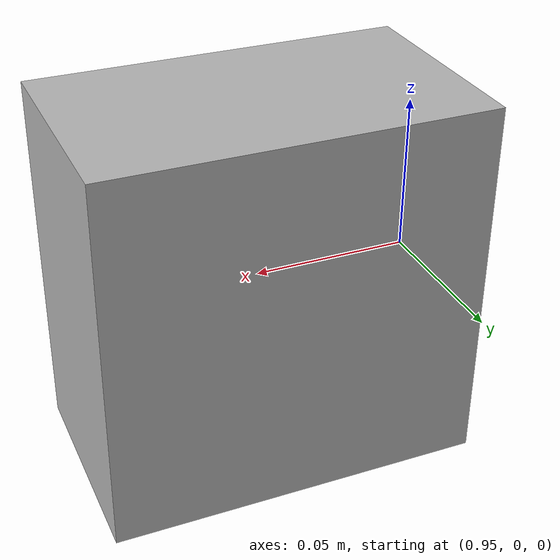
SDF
<?xml version="1.0" ?>
<sdf version="1.5">
  <model name="mpnet_box4">
    <pose frame="world">1 0 0.0 0 0 0</pose>
    <link name="mpnet_box4_link">
      <inertial>
        <mass>0.1</mass>
      </inertial>
      <visual name="mpnet_box4_visual">
        <geometry>
          <box>
            <size>0.12 0.07 0.12</size>
          </box>
        </geometry>
      </visual>

      <collision name="mpnet_box4_collision">
        <geometry>
          <box>
            <size>0.12 0.07 0.12</size>
          </box>
        </geometry>
      </collision>

    </link>
  </model>
</sdf>
